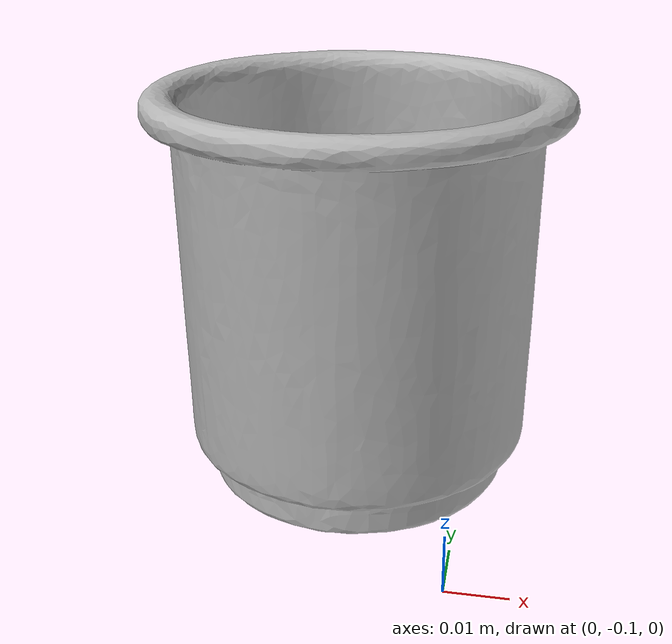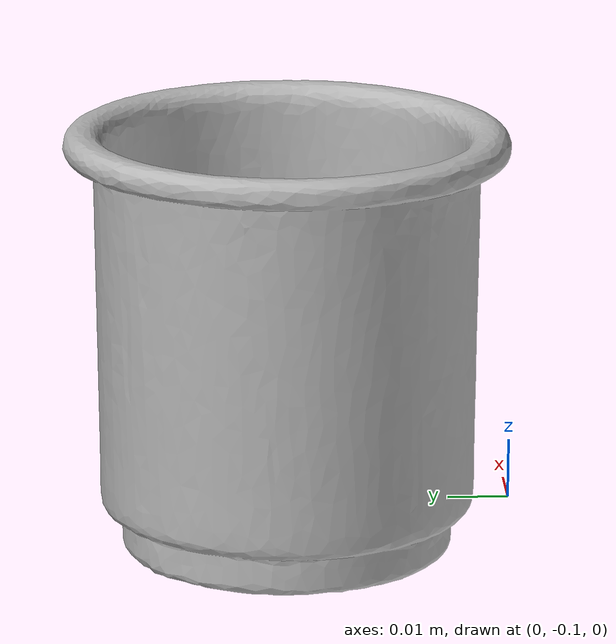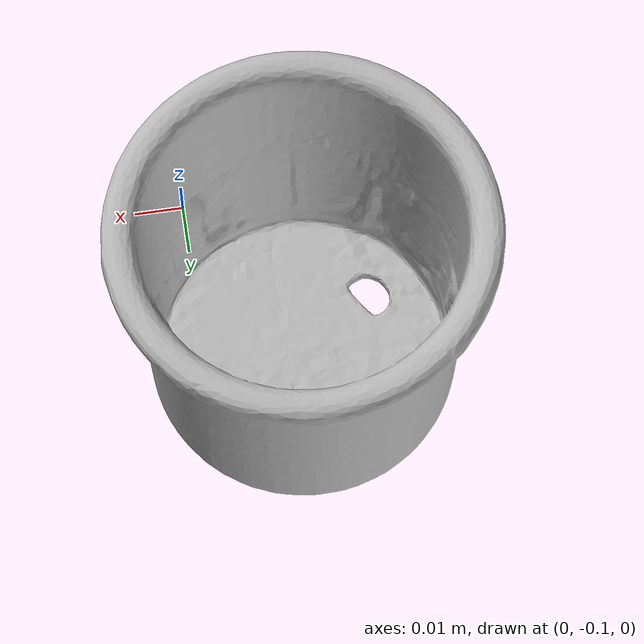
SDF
<?xml version='1.0'?>
<sdf version="1.4">
  <model name="d_cups">
    <static>false</static>
    <link name="link">
      <inertial>
        <pose>-0.018377150074668475 -0.05978666522006067 0.03158304348204601 2.7215145712283038 0.4157447325635033 -2.760692243846375</pose>
        <mass>3.5148756169104494e-05</mass>
        <inertia>
          <ixx>2.9013789460339987e-08</ixx>
          <ixy>1.681933625728887e-24</ixy>
          <ixz>9.720843547915377e-25</ixz>
          <iyy>2.871027632126719e-08</iyy>
          <iyz>-3.3372785216303924e-24</iyz>
          <izz>2.658488549776028e-08</izz>
        </inertia>
      </inertial>
      <collision name="collision">
        <geometry>
          <mesh>
            <!-- Use a downsampled mesh for collisions -->
            <uri>model://065-d_cups/google_16k/065-d_cups.obj</uri>
            </mesh>
        </geometry>
        <surface>
          <friction>
            <ode>
              <mu>0.9</mu>
              <mu2>0.9</mu2>
            </ode>
          </friction>
          <contact>
            <ode>
              <kp>1000000000000.0</kp>
              <kd>1</kd>
              <min_depth>0.0001</min_depth>
              <max_vel>0.01</max_vel>
            </ode>
          </contact>
          <bounce>
            <restitution_coefficient>0.1</restitution_coefficient>
            <threshold>1000.0</threshold>
          </bounce>
        </surface>
      </collision>
      <visual name="visual">
        <geometry>
          <mesh>
            <uri>model://065-d_cups/google_16k/065-d_cups.dae</uri>
            </mesh>
        </geometry>
      </visual>
    </link>
  </model>
</sdf>
